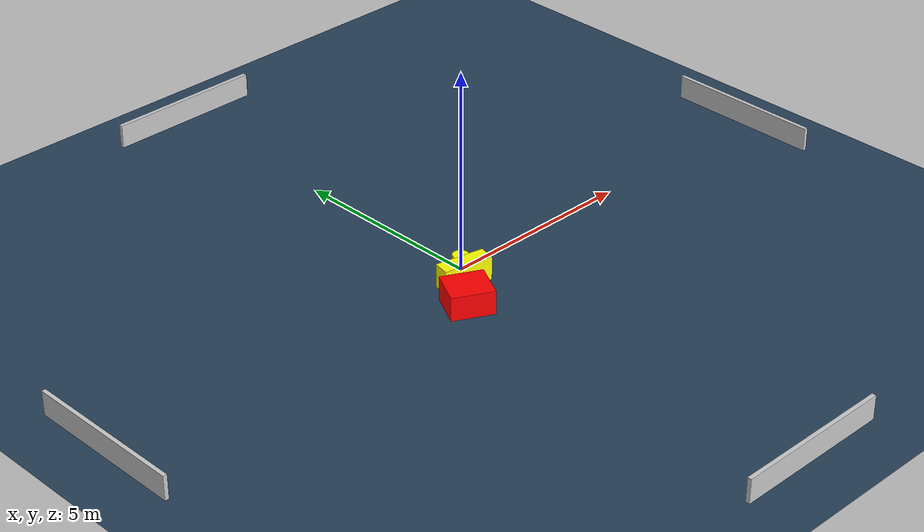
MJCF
<?xml version="1.0" ?>
<mujoco model="generated_environment">
  <option timestep="0.01" integrator="RK4" cone="elliptic"/>
  <default>
    <geom density="1"/>
  </default>
  <asset>
    <texture builtin="gradient" height="3072" name="skybox" rgb1="0.3 0.5 0.7" rgb2="0 0 0" type="skybox" width="512"/>
    <texture builtin="checker" height="300" name="groundplane" rgb1="0.2 0.3 0.4" rgb2="0.1 0.2 0.3" type="2d" width="300"/>
    <material name="groundplane" reflectance="0.2" texrepeat="5 5" texture="groundplane"/>
  </asset>
  <worldbody>
    <light dir="0 0 -1" directional="true" pos="0 0 1.5"/>
    <geom condim="3" friction="0.5 0.005 0.001" material="groundplane" name="floor" pos="0 0 0" size="0 0 0.05" type="plane"/>
    <body name="walls">
      <geom name="wall_1" condim="4" pos="-10.0 0.0 0.3" rgba="0.800000011920929 0.800000011920929 0.800000011920929 1.0" size="0.05 2.0 0.3" type="box"/>
      <geom name="wall_2" condim="4" pos="10.0 0.0 0.3" rgba="0.800000011920929 0.800000011920929 0.800000011920929 1.0" size="0.05 2.0 0.3" type="box"/>
      <geom name="wall_3" condim="4" pos="0.0 -10.0 0.3" rgba="0.800000011920929 0.800000011920929 0.800000011920929 1.0" size="2.0 0.05 0.3" type="box"/>
      <geom name="wall_4" condim="4" pos="0.0 10.0 0.3" rgba="0.800000011920929 0.800000011920929 0.800000011920929 1.0" size="2.0 0.05 0.3" type="box"/>
    </body>
    <body name="robot">
      <joint name="joint_x" type="slide" pos="0 0 0" axis="1 0 0"/>
      <joint name="joint_y" type="slide" pos="0 0 0" axis="0 1 0"/>
      <geom name="robot" type="cylinder" pos="0.0 0.0 0.2" size="0.2 0.2 0.0" mass="5.0" friction="1.0 0.005 0.0001" condim="4" rgba="1.0 1.0 0.0 1.0"/>
    </body>
    <body name="obstacle_1_movable">
      <geom name="obstacle_1_movable" condim="4" pos="-0.3506935458710535 -0.46078921334170997 0.3" euler="0 0 258.26708159483775" friction="0.0 0.005 0.001" rgba="1.0 1.0 0.0 1.0" size="0.20183784121604562 0.6160483570538746 0.3" type="box" mass="0.1"/>
      <joint type="free"/>
    </body>
    <body name="obstacle_2_static">
      <geom name="obstacle_2_static" condim="4" pos="-0.9807705518653392 -1.2039065361566548 0.3" euler="0 0 242.4336827150221" friction="0.0 0.005 0.001" rgba="1.0 0.0 0.0 1.0" size="0.46778920323122736 0.5196722199070622 0.3" type="box"/>
    </body>
  </worldbody>
  <actuator>
    <motor name="actuator_x" joint="joint_x" gear="1" ctrlrange="-1 1"/>
    <motor name="actuator_y" joint="joint_y" gear="1" ctrlrange="-1 1"/>
  </actuator>
</mujoco>
